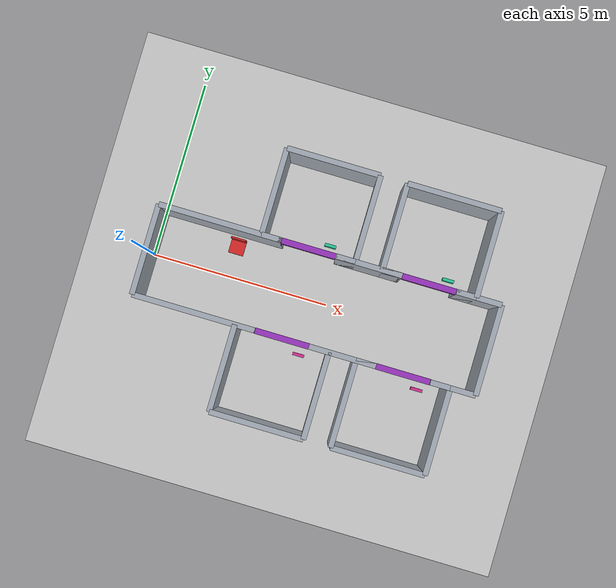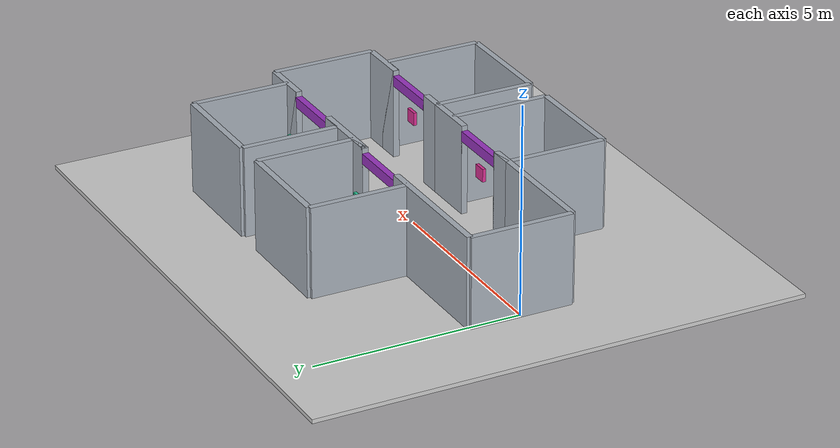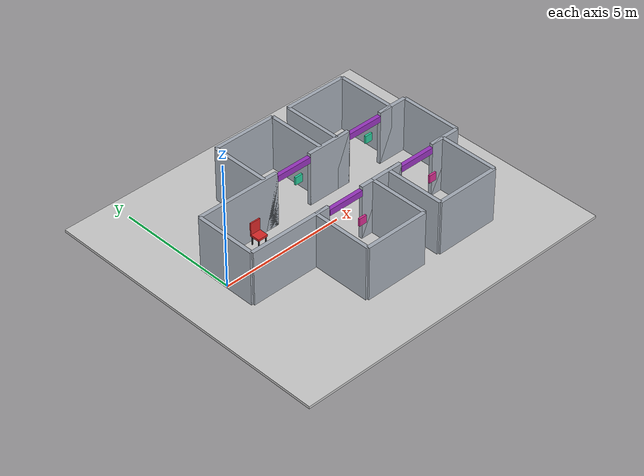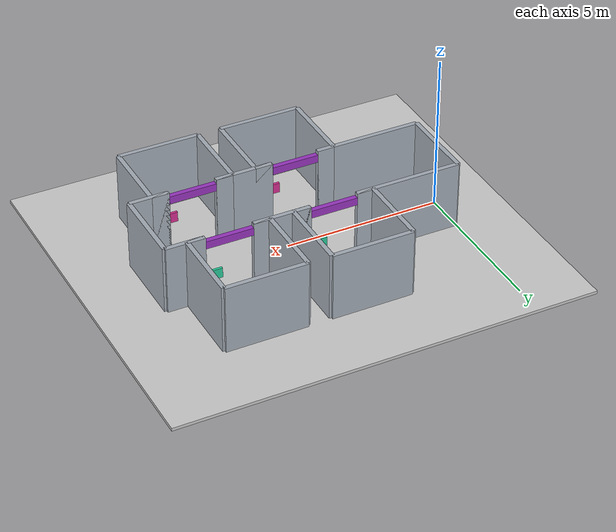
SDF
<sdf version="1.9">
  <world name="default">
    <plugin filename="gz-sim-physics-system" name="gz::sim::systems::Physics" />
    <plugin filename="gz-sim-user-commands-system" name="gz::sim::systems::UserCommands" />
    <plugin filename="gz-sim-sensors-system" name="gz::sim::systems::Sensors">
      <render_engine>ogre2</render_engine>
    </plugin>
    <plugin filename="gz-sim-imu-system" name="gz::sim::systems::Imu" />
    <plugin filename="gz-sim-contact-system" name="gz::sim::systems::Contact" />
    <physics name="3ms" type="ode">
      <max_step_size>0.003</max_step_size>
      <real_time_factor>1</real_time_factor>
    </physics>
    <light name="sun" type="directional">
      <pose>0 0 10 0 0 0</pose>
      <diffuse>0.9 0.9 0.9 1</diffuse>
      <direction>-0.5 0.1 -0.9</direction>
    </light>
    <model name="ground_plane">
      <static>true</static>
      <pose>4.75 0 -0.05 0 0 0</pose>
      <link name="body">
        <collision name="collision">
          <geometry>
            <box>
              <size>13.5 12 0.1</size>
            </box>
          </geometry>
        </collision>
        <visual name="visual">
          <geometry>
            <box>
              <size>13.5 12 0.1</size>
            </box>
          </geometry>
          <material>
            <ambient>0.8 0.8 0.8 1</ambient>
            <diffuse>0.8 0.8 0.8 1</diffuse>
          </material>
        </visual>
      </link>
    </model>
    <model name="start_wall">
      <static>true</static>
      <pose>0 0 1.1 0 0 0</pose>
      <link name="body">
        <collision name="collision">
          <geometry>
            <box>
              <size>0.15 2.5 2.2</size>
            </box>
          </geometry>
        </collision>
        <visual name="visual">
          <geometry>
            <box>
              <size>0.15 2.5 2.2</size>
            </box>
          </geometry>
          <material>
            <ambient>0.65 0.68 0.72 1</ambient>
            <diffuse>0.65 0.68 0.72 1</diffuse>
          </material>
        </visual>
      </link>
    </model>
    <model name="end_wall">
      <static>true</static>
      <pose>9.5 0 1.1 0 0 0</pose>
      <link name="body">
        <collision name="collision">
          <geometry>
            <box>
              <size>0.15 2.5 2.2</size>
            </box>
          </geometry>
        </collision>
        <visual name="visual">
          <geometry>
            <box>
              <size>0.15 2.5 2.2</size>
            </box>
          </geometry>
          <material>
            <ambient>0.65 0.68 0.72 1</ambient>
            <diffuse>0.65 0.68 0.72 1</diffuse>
          </material>
        </visual>
      </link>
    </model>
    <model name="hall_-1_1">
      <static>true</static>
      <pose>1.7000000000000002 -1.25 1.1 0 0 0</pose>
      <link name="body">
        <collision name="collision">
          <geometry>
            <box>
              <size>3.4000000000000004 0.15 2.2</size>
            </box>
          </geometry>
        </collision>
        <visual name="visual">
          <geometry>
            <box>
              <size>3.4000000000000004 0.15 2.2</size>
            </box>
          </geometry>
          <material>
            <ambient>0.65 0.68 0.72 1</ambient>
            <diffuse>0.65 0.68 0.72 1</diffuse>
          </material>
        </visual>
      </link>
    </model>
    <model name="room_-1_1_-1">
      <static>true</static>
      <pose>2.8500000000000005 -2.45 1.1 0 0 0</pose>
      <link name="body">
        <collision name="collision">
          <geometry>
            <box>
              <size>0.15 2.4 2.2</size>
            </box>
          </geometry>
        </collision>
        <visual name="visual">
          <geometry>
            <box>
              <size>0.15 2.4 2.2</size>
            </box>
          </geometry>
          <material>
            <ambient>0.65 0.68 0.72 1</ambient>
            <diffuse>0.65 0.68 0.72 1</diffuse>
          </material>
        </visual>
      </link>
    </model>
    <model name="room_-1_1_1">
      <static>true</static>
      <pose>5.45 -2.45 1.1 0 0 0</pose>
      <link name="body">
        <collision name="collision">
          <geometry>
            <box>
              <size>0.15 2.4 2.2</size>
            </box>
          </geometry>
        </collision>
        <visual name="visual">
          <geometry>
            <box>
              <size>0.15 2.4 2.2</size>
            </box>
          </geometry>
          <material>
            <ambient>0.65 0.68 0.72 1</ambient>
            <diffuse>0.65 0.68 0.72 1</diffuse>
          </material>
        </visual>
      </link>
    </model>
    <model name="room_end_-1_1">
      <static>true</static>
      <pose>4.15 -3.65 1.1 0 0 0</pose>
      <link name="body">
        <collision name="collision">
          <geometry>
            <box>
              <size>2.6 0.15 2.2</size>
            </box>
          </geometry>
        </collision>
        <visual name="visual">
          <geometry>
            <box>
              <size>2.6 0.15 2.2</size>
            </box>
          </geometry>
          <material>
            <ambient>0.65 0.68 0.72 1</ambient>
            <diffuse>0.65 0.68 0.72 1</diffuse>
          </material>
        </visual>
      </link>
    </model>
    <model name="jamb_-1_1_-1">
      <static>true</static>
      <pose>3.1250000000000004 -1.25 1.1 0 0 0</pose>
      <link name="body">
        <collision name="collision">
          <geometry>
            <box>
              <size>0.55 0.15 2.2</size>
            </box>
          </geometry>
        </collision>
        <visual name="visual">
          <geometry>
            <box>
              <size>0.55 0.15 2.2</size>
            </box>
          </geometry>
          <material>
            <ambient>0.65 0.68 0.72 1</ambient>
            <diffuse>0.65 0.68 0.72 1</diffuse>
          </material>
        </visual>
      </link>
    </model>
    <model name="jamb_-1_1_1">
      <static>true</static>
      <pose>5.175000000000001 -1.25 1.1 0 0 0</pose>
      <link name="body">
        <collision name="collision">
          <geometry>
            <box>
              <size>0.55 0.15 2.2</size>
            </box>
          </geometry>
        </collision>
        <visual name="visual">
          <geometry>
            <box>
              <size>0.55 0.15 2.2</size>
            </box>
          </geometry>
          <material>
            <ambient>0.65 0.68 0.72 1</ambient>
            <diffuse>0.65 0.68 0.72 1</diffuse>
          </material>
        </visual>
      </link>
    </model>
    <model name="hall_-1_2">
      <static>true</static>
      <pose>5.825 -1.25 1.1 0 0 0</pose>
      <link name="body">
        <collision name="collision">
          <geometry>
            <box>
              <size>1.8499999999999996 0.15 2.2</size>
            </box>
          </geometry>
        </collision>
        <visual name="visual">
          <geometry>
            <box>
              <size>1.8499999999999996 0.15 2.2</size>
            </box>
          </geometry>
          <material>
            <ambient>0.65 0.68 0.72 1</ambient>
            <diffuse>0.65 0.68 0.72 1</diffuse>
          </material>
        </visual>
      </link>
    </model>
    <model name="room_-1_2_-1">
      <static>true</static>
      <pose>6.2 -2.45 1.1 0 0 0</pose>
      <link name="body">
        <collision name="collision">
          <geometry>
            <box>
              <size>0.15 2.4 2.2</size>
            </box>
          </geometry>
        </collision>
        <visual name="visual">
          <geometry>
            <box>
              <size>0.15 2.4 2.2</size>
            </box>
          </geometry>
          <material>
            <ambient>0.65 0.68 0.72 1</ambient>
            <diffuse>0.65 0.68 0.72 1</diffuse>
          </material>
        </visual>
      </link>
    </model>
    <model name="room_-1_2_1">
      <static>true</static>
      <pose>8.8 -2.45 1.1 0 0 0</pose>
      <link name="body">
        <collision name="collision">
          <geometry>
            <box>
              <size>0.15 2.4 2.2</size>
            </box>
          </geometry>
        </collision>
        <visual name="visual">
          <geometry>
            <box>
              <size>0.15 2.4 2.2</size>
            </box>
          </geometry>
          <material>
            <ambient>0.65 0.68 0.72 1</ambient>
            <diffuse>0.65 0.68 0.72 1</diffuse>
          </material>
        </visual>
      </link>
    </model>
    <model name="room_end_-1_2">
      <static>true</static>
      <pose>7.5 -3.65 1.1 0 0 0</pose>
      <link name="body">
        <collision name="collision">
          <geometry>
            <box>
              <size>2.6 0.15 2.2</size>
            </box>
          </geometry>
        </collision>
        <visual name="visual">
          <geometry>
            <box>
              <size>2.6 0.15 2.2</size>
            </box>
          </geometry>
          <material>
            <ambient>0.65 0.68 0.72 1</ambient>
            <diffuse>0.65 0.68 0.72 1</diffuse>
          </material>
        </visual>
      </link>
    </model>
    <model name="jamb_-1_2_-1">
      <static>true</static>
      <pose>6.475 -1.25 1.1 0 0 0</pose>
      <link name="body">
        <collision name="collision">
          <geometry>
            <box>
              <size>0.55 0.15 2.2</size>
            </box>
          </geometry>
        </collision>
        <visual name="visual">
          <geometry>
            <box>
              <size>0.55 0.15 2.2</size>
            </box>
          </geometry>
          <material>
            <ambient>0.65 0.68 0.72 1</ambient>
            <diffuse>0.65 0.68 0.72 1</diffuse>
          </material>
        </visual>
      </link>
    </model>
    <model name="jamb_-1_2_1">
      <static>true</static>
      <pose>8.525 -1.25 1.1 0 0 0</pose>
      <link name="body">
        <collision name="collision">
          <geometry>
            <box>
              <size>0.55 0.15 2.2</size>
            </box>
          </geometry>
        </collision>
        <visual name="visual">
          <geometry>
            <box>
              <size>0.55 0.15 2.2</size>
            </box>
          </geometry>
          <material>
            <ambient>0.65 0.68 0.72 1</ambient>
            <diffuse>0.65 0.68 0.72 1</diffuse>
          </material>
        </visual>
      </link>
    </model>
    <model name="hall_end_-1">
      <static>true</static>
      <pose>8.875 -1.25 1.1 0 0 0</pose>
      <link name="body">
        <collision name="collision">
          <geometry>
            <box>
              <size>1.25 0.15 2.2</size>
            </box>
          </geometry>
        </collision>
        <visual name="visual">
          <geometry>
            <box>
              <size>1.25 0.15 2.2</size>
            </box>
          </geometry>
          <material>
            <ambient>0.65 0.68 0.72 1</ambient>
            <diffuse>0.65 0.68 0.72 1</diffuse>
          </material>
        </visual>
      </link>
    </model>
    <model name="hall_1_1">
      <static>true</static>
      <pose>1.7000000000000002 1.25 1.1 0 0 0</pose>
      <link name="body">
        <collision name="collision">
          <geometry>
            <box>
              <size>3.4000000000000004 0.15 2.2</size>
            </box>
          </geometry>
        </collision>
        <visual name="visual">
          <geometry>
            <box>
              <size>3.4000000000000004 0.15 2.2</size>
            </box>
          </geometry>
          <material>
            <ambient>0.65 0.68 0.72 1</ambient>
            <diffuse>0.65 0.68 0.72 1</diffuse>
          </material>
        </visual>
      </link>
    </model>
    <model name="room_1_1_-1">
      <static>true</static>
      <pose>2.8500000000000005 2.45 1.1 0 0 0</pose>
      <link name="body">
        <collision name="collision">
          <geometry>
            <box>
              <size>0.15 2.4 2.2</size>
            </box>
          </geometry>
        </collision>
        <visual name="visual">
          <geometry>
            <box>
              <size>0.15 2.4 2.2</size>
            </box>
          </geometry>
          <material>
            <ambient>0.65 0.68 0.72 1</ambient>
            <diffuse>0.65 0.68 0.72 1</diffuse>
          </material>
        </visual>
      </link>
    </model>
    <model name="room_1_1_1">
      <static>true</static>
      <pose>5.45 2.45 1.1 0 0 0</pose>
      <link name="body">
        <collision name="collision">
          <geometry>
            <box>
              <size>0.15 2.4 2.2</size>
            </box>
          </geometry>
        </collision>
        <visual name="visual">
          <geometry>
            <box>
              <size>0.15 2.4 2.2</size>
            </box>
          </geometry>
          <material>
            <ambient>0.65 0.68 0.72 1</ambient>
            <diffuse>0.65 0.68 0.72 1</diffuse>
          </material>
        </visual>
      </link>
    </model>
    <model name="room_end_1_1">
      <static>true</static>
      <pose>4.15 3.65 1.1 0 0 0</pose>
      <link name="body">
        <collision name="collision">
          <geometry>
            <box>
              <size>2.6 0.15 2.2</size>
            </box>
          </geometry>
        </collision>
        <visual name="visual">
          <geometry>
            <box>
              <size>2.6 0.15 2.2</size>
            </box>
          </geometry>
          <material>
            <ambient>0.65 0.68 0.72 1</ambient>
            <diffuse>0.65 0.68 0.72 1</diffuse>
          </material>
        </visual>
      </link>
    </model>
    <model name="jamb_1_1_-1">
      <static>true</static>
      <pose>3.1250000000000004 1.25 1.1 0 0 0</pose>
      <link name="body">
        <collision name="collision">
          <geometry>
            <box>
              <size>0.55 0.15 2.2</size>
            </box>
          </geometry>
        </collision>
        <visual name="visual">
          <geometry>
            <box>
              <size>0.55 0.15 2.2</size>
            </box>
          </geometry>
          <material>
            <ambient>0.65 0.68 0.72 1</ambient>
            <diffuse>0.65 0.68 0.72 1</diffuse>
          </material>
        </visual>
      </link>
    </model>
    <model name="jamb_1_1_1">
      <static>true</static>
      <pose>5.175000000000001 1.25 1.1 0 0 0</pose>
      <link name="body">
        <collision name="collision">
          <geometry>
            <box>
              <size>0.55 0.15 2.2</size>
            </box>
          </geometry>
        </collision>
        <visual name="visual">
          <geometry>
            <box>
              <size>0.55 0.15 2.2</size>
            </box>
          </geometry>
          <material>
            <ambient>0.65 0.68 0.72 1</ambient>
            <diffuse>0.65 0.68 0.72 1</diffuse>
          </material>
        </visual>
      </link>
    </model>
    <model name="hall_1_2">
      <static>true</static>
      <pose>5.825 1.25 1.1 0 0 0</pose>
      <link name="body">
        <collision name="collision">
          <geometry>
            <box>
              <size>1.8499999999999996 0.15 2.2</size>
            </box>
          </geometry>
        </collision>
        <visual name="visual">
          <geometry>
            <box>
              <size>1.8499999999999996 0.15 2.2</size>
            </box>
          </geometry>
          <material>
            <ambient>0.65 0.68 0.72 1</ambient>
            <diffuse>0.65 0.68 0.72 1</diffuse>
          </material>
        </visual>
      </link>
    </model>
    <model name="room_1_2_-1">
      <static>true</static>
      <pose>6.2 2.45 1.1 0 0 0</pose>
      <link name="body">
        <collision name="collision">
          <geometry>
            <box>
              <size>0.15 2.4 2.2</size>
            </box>
          </geometry>
        </collision>
        <visual name="visual">
          <geometry>
            <box>
              <size>0.15 2.4 2.2</size>
            </box>
          </geometry>
          <material>
            <ambient>0.65 0.68 0.72 1</ambient>
            <diffuse>0.65 0.68 0.72 1</diffuse>
          </material>
        </visual>
      </link>
    </model>
    <model name="room_1_2_1">
      <static>true</static>
      <pose>8.8 2.45 1.1 0 0 0</pose>
      <link name="body">
        <collision name="collision">
          <geometry>
            <box>
              <size>0.15 2.4 2.2</size>
            </box>
          </geometry>
        </collision>
        <visual name="visual">
          <geometry>
            <box>
              <size>0.15 2.4 2.2</size>
            </box>
          </geometry>
          <material>
            <ambient>0.65 0.68 0.72 1</ambient>
            <diffuse>0.65 0.68 0.72 1</diffuse>
          </material>
        </visual>
      </link>
    </model>
    <model name="room_end_1_2">
      <static>true</static>
      <pose>7.5 3.65 1.1 0 0 0</pose>
      <link name="body">
        <collision name="collision">
          <geometry>
            <box>
              <size>2.6 0.15 2.2</size>
            </box>
          </geometry>
        </collision>
        <visual name="visual">
          <geometry>
            <box>
              <size>2.6 0.15 2.2</size>
            </box>
          </geometry>
          <material>
            <ambient>0.65 0.68 0.72 1</ambient>
            <diffuse>0.65 0.68 0.72 1</diffuse>
          </material>
        </visual>
      </link>
    </model>
    <model name="jamb_1_2_-1">
      <static>true</static>
      <pose>6.475 1.25 1.1 0 0 0</pose>
      <link name="body">
        <collision name="collision">
          <geometry>
            <box>
              <size>0.55 0.15 2.2</size>
            </box>
          </geometry>
        </collision>
        <visual name="visual">
          <geometry>
            <box>
              <size>0.55 0.15 2.2</size>
            </box>
          </geometry>
          <material>
            <ambient>0.65 0.68 0.72 1</ambient>
            <diffuse>0.65 0.68 0.72 1</diffuse>
          </material>
        </visual>
      </link>
    </model>
    <model name="jamb_1_2_1">
      <static>true</static>
      <pose>8.525 1.25 1.1 0 0 0</pose>
      <link name="body">
        <collision name="collision">
          <geometry>
            <box>
              <size>0.55 0.15 2.2</size>
            </box>
          </geometry>
        </collision>
        <visual name="visual">
          <geometry>
            <box>
              <size>0.55 0.15 2.2</size>
            </box>
          </geometry>
          <material>
            <ambient>0.65 0.68 0.72 1</ambient>
            <diffuse>0.65 0.68 0.72 1</diffuse>
          </material>
        </visual>
      </link>
    </model>
    <model name="hall_end_1">
      <static>true</static>
      <pose>8.875 1.25 1.1 0 0 0</pose>
      <link name="body">
        <collision name="collision">
          <geometry>
            <box>
              <size>1.25 0.15 2.2</size>
            </box>
          </geometry>
        </collision>
        <visual name="visual">
          <geometry>
            <box>
              <size>1.25 0.15 2.2</size>
            </box>
          </geometry>
          <material>
            <ambient>0.65 0.68 0.72 1</ambient>
            <diffuse>0.65 0.68 0.72 1</diffuse>
          </material>
        </visual>
      </link>
    </model>
    <model name="chair_seat">
      <static>true</static>
      <pose>2.2 0.85 0.4 0 0 0</pose>
      <link name="body">
        <collision name="collision">
          <geometry>
            <box>
              <size>0.42 0.42 0.08</size>
            </box>
          </geometry>
        </collision>
        <visual name="visual">
          <geometry>
            <box>
              <size>0.42 0.42 0.08</size>
            </box>
          </geometry>
          <material>
            <ambient>0.86 0.16 0.16 1</ambient>
            <diffuse>0.86 0.16 0.16 1</diffuse>
          </material>
        </visual>
      </link>
    </model>
    <model name="chair_back">
      <static>true</static>
      <pose>2.2 1.04 0.67 0 0 0</pose>
      <link name="body">
        <collision name="collision">
          <geometry>
            <box>
              <size>0.42 0.05 0.5</size>
            </box>
          </geometry>
        </collision>
        <visual name="visual">
          <geometry>
            <box>
              <size>0.42 0.05 0.5</size>
            </box>
          </geometry>
          <material>
            <ambient>0.86 0.16 0.16 1</ambient>
            <diffuse>0.86 0.16 0.16 1</diffuse>
          </material>
        </visual>
      </link>
    </model>
    <model name="chair_leg_-0.16_-0.16">
      <static>true</static>
      <pose>2.04 0.69 0.19 0 0 0</pose>
      <link name="body">
        <collision name="collision">
          <geometry>
            <box>
              <size>0.04 0.04 0.38</size>
            </box>
          </geometry>
        </collision>
        <visual name="visual">
          <geometry>
            <box>
              <size>0.04 0.04 0.38</size>
            </box>
          </geometry>
          <material>
            <ambient>0.2 0.2 0.2 1</ambient>
            <diffuse>0.2 0.2 0.2 1</diffuse>
          </material>
        </visual>
      </link>
    </model>
    <model name="chair_leg_-0.16_0.16">
      <static>true</static>
      <pose>2.04 1.01 0.19 0 0 0</pose>
      <link name="body">
        <collision name="collision">
          <geometry>
            <box>
              <size>0.04 0.04 0.38</size>
            </box>
          </geometry>
        </collision>
        <visual name="visual">
          <geometry>
            <box>
              <size>0.04 0.04 0.38</size>
            </box>
          </geometry>
          <material>
            <ambient>0.2 0.2 0.2 1</ambient>
            <diffuse>0.2 0.2 0.2 1</diffuse>
          </material>
        </visual>
      </link>
    </model>
    <model name="chair_leg_0.16_-0.16">
      <static>true</static>
      <pose>2.3600000000000003 0.69 0.19 0 0 0</pose>
      <link name="body">
        <collision name="collision">
          <geometry>
            <box>
              <size>0.04 0.04 0.38</size>
            </box>
          </geometry>
        </collision>
        <visual name="visual">
          <geometry>
            <box>
              <size>0.04 0.04 0.38</size>
            </box>
          </geometry>
          <material>
            <ambient>0.2 0.2 0.2 1</ambient>
            <diffuse>0.2 0.2 0.2 1</diffuse>
          </material>
        </visual>
      </link>
    </model>
    <model name="chair_leg_0.16_0.16">
      <static>true</static>
      <pose>2.3600000000000003 1.01 0.19 0 0 0</pose>
      <link name="body">
        <collision name="collision">
          <geometry>
            <box>
              <size>0.04 0.04 0.38</size>
            </box>
          </geometry>
        </collision>
        <visual name="visual">
          <geometry>
            <box>
              <size>0.04 0.04 0.38</size>
            </box>
          </geometry>
          <material>
            <ambient>0.2 0.2 0.2 1</ambient>
            <diffuse>0.2 0.2 0.2 1</diffuse>
          </material>
        </visual>
      </link>
    </model>
    <model name="r3geo_base_r005_right_1_lintel">
      <static>true</static>
      <pose>4.15 -1.25 1.95 0 0 0</pose>
      <link name="body">
        <collision name="collision">
          <geometry>
            <box>
              <size>1.5 0.16 0.25</size>
            </box>
          </geometry>
        </collision>
        <visual name="visual">
          <geometry>
            <box>
              <size>1.5 0.16 0.25</size>
            </box>
          </geometry>
          <material>
            <ambient>0.6 0.2 0.75 1</ambient>
            <diffuse>0.6 0.2 0.75 1</diffuse>
          </material>
        </visual>
      </link>
    </model>
    <model name="r3geo_base_r005_right_1_entrance_sign">
      <static>true</static>
      <pose>4.680000000000001 -1.55 1.05 0 0 0</pose>
      <link name="body">
        <visual name="visual">
          <geometry>
            <box>
              <size>0.32 0.08 0.32</size>
            </box>
          </geometry>
          <material>
            <ambient>0.84 0.18 0.57 1</ambient>
            <diffuse>0.84 0.18 0.57 1</diffuse>
          </material>
        </visual>
      </link>
    </model>
    <model name="r3geo_base_r005_right_2_lintel">
      <static>true</static>
      <pose>7.5 -1.25 1.95 0 0 0</pose>
      <link name="body">
        <collision name="collision">
          <geometry>
            <box>
              <size>1.5 0.16 0.25</size>
            </box>
          </geometry>
        </collision>
        <visual name="visual">
          <geometry>
            <box>
              <size>1.5 0.16 0.25</size>
            </box>
          </geometry>
          <material>
            <ambient>0.6 0.2 0.75 1</ambient>
            <diffuse>0.6 0.2 0.75 1</diffuse>
          </material>
        </visual>
      </link>
    </model>
    <model name="r3geo_base_r005_right_2_entrance_sign">
      <static>true</static>
      <pose>8.03 -1.55 1.05 0 0 0</pose>
      <link name="body">
        <visual name="visual">
          <geometry>
            <box>
              <size>0.32 0.08 0.32</size>
            </box>
          </geometry>
          <material>
            <ambient>0.84 0.18 0.57 1</ambient>
            <diffuse>0.84 0.18 0.57 1</diffuse>
          </material>
        </visual>
      </link>
    </model>
    <model name="r3geo_base_r005_left_1_lintel">
      <static>true</static>
      <pose>4.15 1.25 1.95 0 0 0</pose>
      <link name="body">
        <collision name="collision">
          <geometry>
            <box>
              <size>1.5 0.16 0.25</size>
            </box>
          </geometry>
        </collision>
        <visual name="visual">
          <geometry>
            <box>
              <size>1.5 0.16 0.25</size>
            </box>
          </geometry>
          <material>
            <ambient>0.6 0.2 0.75 1</ambient>
            <diffuse>0.6 0.2 0.75 1</diffuse>
          </material>
        </visual>
      </link>
    </model>
    <model name="r3geo_base_r005_left_1_entrance_sign">
      <static>true</static>
      <pose>4.680000000000001 1.55 1.05 0 0 0</pose>
      <link name="body">
        <visual name="visual">
          <geometry>
            <box>
              <size>0.32 0.08 0.32</size>
            </box>
          </geometry>
          <material>
            <ambient>0.16 0.8 0.61 1</ambient>
            <diffuse>0.16 0.8 0.61 1</diffuse>
          </material>
        </visual>
      </link>
    </model>
    <model name="r3geo_base_r005_left_2_lintel">
      <static>true</static>
      <pose>7.5 1.25 1.95 0 0 0</pose>
      <link name="body">
        <collision name="collision">
          <geometry>
            <box>
              <size>1.5 0.16 0.25</size>
            </box>
          </geometry>
        </collision>
        <visual name="visual">
          <geometry>
            <box>
              <size>1.5 0.16 0.25</size>
            </box>
          </geometry>
          <material>
            <ambient>0.6 0.2 0.75 1</ambient>
            <diffuse>0.6 0.2 0.75 1</diffuse>
          </material>
        </visual>
      </link>
    </model>
    <model name="r3geo_base_r005_left_2_entrance_sign">
      <static>true</static>
      <pose>8.03 1.55 1.05 0 0 0</pose>
      <link name="body">
        <visual name="visual">
          <geometry>
            <box>
              <size>0.32 0.08 0.32</size>
            </box>
          </geometry>
          <material>
            <ambient>0.16 0.8 0.61 1</ambient>
            <diffuse>0.16 0.8 0.61 1</diffuse>
          </material>
        </visual>
      </link>
    </model>
  </world>
</sdf>
